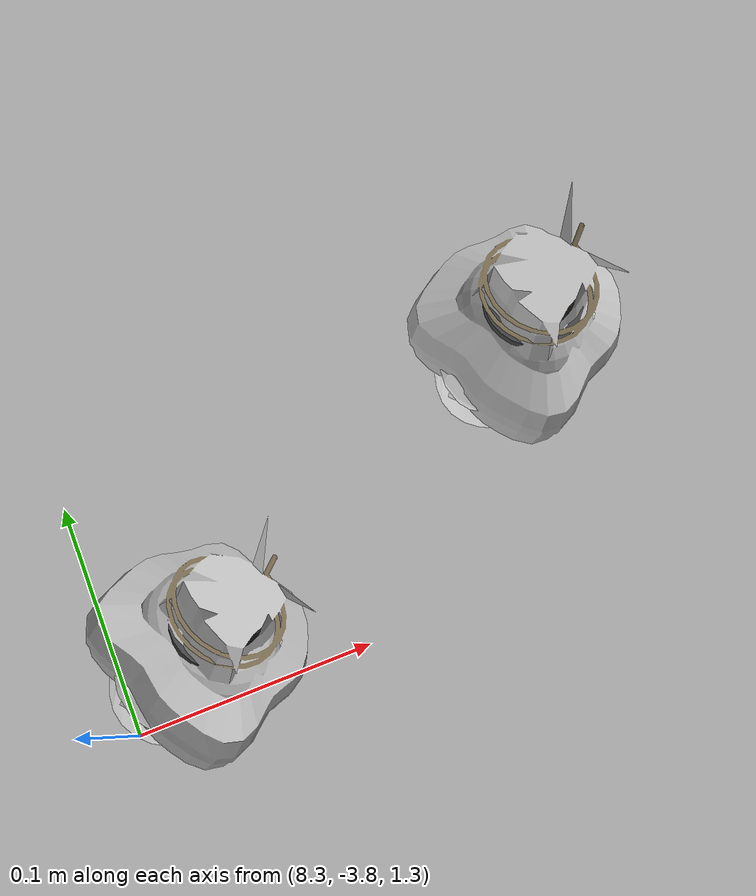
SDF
<sdf version="1.11">
 <world name="peach_orchard">
  <model name="ground">
   <static>true</static>
   <link name="link">
    <visual name="soil">
     <geometry><plane><normal>0 0 1</normal><size>32 22</size></plane></geometry>
     <material>
      <ambient>1 1 1 1</ambient>
      <diffuse>1 1 1 1</diffuse>
      <specular>0.1 0.1 0.1 1</specular>
      <pbr>
       <metal>
        <albedo_map>textures/soil_albedo.png</albedo_map>
        <normal_map type="tangent">textures/soil_normal.png</normal_map>
        <roughness>0.95</roughness>
        <metalness>0</metalness>
       </metal>
      </pbr>
     </material>
    </visual>
    <collision name="c_soil">
     <geometry><plane><normal>0 0 1</normal><size>32 22</size></plane></geometry>
    </collision>
   </link>
  </model>
  <model name="peach_tree_r4_t1_07">
   <pose>8.32265 -3.781 1.27 0 0.489726 0.386636</pose>
   <static>true</static>
   <link name="bag">
    <visual name="bag_mesh">
     <pose>0 0 0.0393109 0 0 0</pose>
     <geometry>
      <mesh><uri>model://peach_sim/meshes/bagged_peach.glb</uri><scale>1.03281 1.26124 0.893431</scale></mesh>
     </geometry>
    </visual>
    <visual name="body">
     <pose>0 0 0.0213109 0 0 0</pose>
     <geometry><ellipsoid><radii>0.0387306 0.0327921 0.0230158</radii></ellipsoid></geometry>
     <material>
      <ambient>1 1 1 1</ambient>
      <diffuse>1 1 1 1</diffuse>
      <specular>0.1 0.1 0.1 1</specular>
      <pbr>
       <metal>
        <albedo_map>textures/paper_bag_albedo.png</albedo_map>
        <normal_map type="tangent">textures/paper_bag_normal.png</normal_map>
        <roughness>0.72</roughness>
        <metalness>0</metalness>
       </metal>
      </pbr>
     </material>
    </visual>
    <visual name="bottom_fold">
     <pose>0 0 0.012 0 0 0.35</pose>
     <geometry><box><size>0.0600324 0.0377109 0.022</size></box></geometry>
     <material>
      <ambient>1 1 1 1</ambient>
      <diffuse>1 1 1 1</diffuse>
      <specular>0.1 0.1 0.1 1</specular>
      <pbr>
       <metal>
        <albedo_map>textures/paper_bag_albedo.png</albedo_map>
        <normal_map type="tangent">textures/paper_bag_normal.png</normal_map>
        <roughness>0.8</roughness>
        <metalness>0</metalness>
       </metal>
      </pbr>
     </material>
    </visual>
    <visual name="fruit">
     <pose>0 0 0.0219365 0 0 0</pose>
     <geometry><sphere><radius>0.029054</radius></sphere></geometry>
     <material>
      <ambient>1 1 1 1</ambient>
      <diffuse>1 1 1 1</diffuse>
      <specular>0.1 0.1 0.1 1</specular>
      <pbr>
       <metal>
        <albedo_map>textures/fruit_skin_albedo.png</albedo_map>
        <normal_map type="tangent">textures/fruit_skin_normal.png</normal_map>
        <roughness>0.55</roughness>
        <metalness>0</metalness>
       </metal>
      </pbr>
     </material>
    </visual>
    <visual name="neck">
     <pose>0 0 0.0516219 0 0 0</pose>
     <geometry><cylinder><radius>0.013</radius><length>0.018</length></cylinder></geometry>
     <material>
      <ambient>1 1 1 1</ambient>
      <diffuse>1 1 1 1</diffuse>
      <specular>0.1 0.1 0.1 1</specular>
      <pbr>
       <metal>
        <albedo_map>textures/paper_bag_albedo.png</albedo_map>
        <normal_map type="tangent">textures/paper_bag_normal.png</normal_map>
        <roughness>0.75</roughness>
        <metalness>0</metalness>
       </metal>
      </pbr>
     </material>
    </visual>
    <visual name="gather">
     <pose>0 0 0.0326219 0 0 0</pose>
     <geometry><cylinder><radius>0.019</radius><length>0.02</length></cylinder></geometry>
     <material>
      <ambient>1 1 1 1</ambient>
      <diffuse>1 1 1 1</diffuse>
      <specular>0.1 0.1 0.1 1</specular>
      <pbr>
       <metal>
        <albedo_map>textures/paper_bag_albedo.png</albedo_map>
        <normal_map type="tangent">textures/paper_bag_normal.png</normal_map>
        <roughness>0.8</roughness>
        <metalness>0</metalness>
       </metal>
      </pbr>
     </material>
    </visual>
    <visual name="inner_paper">
     <pose>0 0 0.0566219 0 0 0</pose>
     <geometry><cylinder><radius>0.01</radius><length>0.008</length></cylinder></geometry>
     <material>
      <ambient>0.180392 0.14902 0.133333 1</ambient>
      <diffuse>0.180392 0.14902 0.133333 1</diffuse>
      <specular>0.1 0.1 0.1 1</specular>
     </material>
    </visual>
    <visual name="wire_0">
     <pose>0 0 0.0466219 0 0 0</pose>
     <geometry><cylinder><radius>0.0205</radius><length>0.0035</length></cylinder></geometry>
     <material>
      <ambient>0.25 0.25 0.25 1</ambient>
      <diffuse>0.25 0.25 0.25 1</diffuse>
      <specular>0.1 0.1 0.1 1</specular>
     </material>
    </visual>
    <visual name="wire_1">
     <pose>0 0 0.0536219 0 0 0</pose>
     <geometry><cylinder><radius>0.0205</radius><length>0.0035</length></cylinder></geometry>
     <material>
      <ambient>0.25 0.25 0.25 1</ambient>
      <diffuse>0.25 0.25 0.25 1</diffuse>
      <specular>0.1 0.1 0.1 1</specular>
     </material>
    </visual>
    <visual name="wire_tail">
     <pose>0.01 0 0.0546219 0 0.521618 0</pose>
     <geometry><cylinder><radius>0.0012</radius><length>0.026</length></cylinder></geometry>
     <material>
      <ambient>0.25 0.25 0.25 1</ambient>
      <diffuse>0.25 0.25 0.25 1</diffuse>
      <specular>0.1 0.1 0.1 1</specular>
     </material>
    </visual>
    <collision name="c_body">
     <pose>0 0 0.0213109 0 0 0</pose>
     <geometry><cylinder><radius>0.0387306</radius><length>0.0426219</length></cylinder></geometry>
    </collision>
   </link>
  </model>
  <model name="peach_tree_r4_t1_08">
   <pose>8.50935 -3.69882 1.27 0 0.031279 0.453744</pose>
   <static>true</static>
   <link name="bag">
    <visual name="bag_mesh">
     <pose>0 0 0.0459509 0 0 0</pose>
     <geometry>
      <mesh><uri>model://peach_sim/meshes/bagged_peach.glb</uri><scale>1.04992 1.24246 1.04434</scale></mesh>
     </geometry>
    </visual>
    <visual name="body">
     <pose>0 0 0.0279509 0 0 0</pose>
     <geometry><ellipsoid><radii>0.0393721 0.032304 0.0301869</radii></ellipsoid></geometry>
     <material>
      <ambient>1 1 1 1</ambient>
      <diffuse>1 1 1 1</diffuse>
      <specular>0.1 0.1 0.1 1</specular>
      <pbr>
       <metal>
        <albedo_map>textures/paper_bag_albedo.png</albedo_map>
        <normal_map type="tangent">textures/paper_bag_normal.png</normal_map>
        <roughness>0.72</roughness>
        <metalness>0</metalness>
       </metal>
      </pbr>
     </material>
    </visual>
    <visual name="bottom_fold">
     <pose>0 0 0.012 0 0 0.35</pose>
     <geometry><box><size>0.0610268 0.0371495 0.022</size></box></geometry>
     <material>
      <ambient>1 1 1 1</ambient>
      <diffuse>1 1 1 1</diffuse>
      <specular>0.1 0.1 0.1 1</specular>
      <pbr>
       <metal>
        <albedo_map>textures/paper_bag_albedo.png</albedo_map>
        <normal_map type="tangent">textures/paper_bag_normal.png</normal_map>
        <roughness>0.8</roughness>
        <metalness>0</metalness>
       </metal>
      </pbr>
     </material>
    </visual>
    <visual name="fruit">
     <pose>0 0 0.0215998 0 0 0</pose>
     <geometry><sphere><radius>0.0287037</radius></sphere></geometry>
     <material>
      <ambient>1 1 1 1</ambient>
      <diffuse>1 1 1 1</diffuse>
      <specular>0.1 0.1 0.1 1</specular>
      <pbr>
       <metal>
        <albedo_map>textures/fruit_skin_albedo.png</albedo_map>
        <normal_map type="tangent">textures/fruit_skin_normal.png</normal_map>
        <roughness>0.55</roughness>
        <metalness>0</metalness>
       </metal>
      </pbr>
     </material>
    </visual>
    <visual name="neck">
     <pose>0 0 0.0649017 0 0 0</pose>
     <geometry><cylinder><radius>0.013</radius><length>0.018</length></cylinder></geometry>
     <material>
      <ambient>1 1 1 1</ambient>
      <diffuse>1 1 1 1</diffuse>
      <specular>0.1 0.1 0.1 1</specular>
      <pbr>
       <metal>
        <albedo_map>textures/paper_bag_albedo.png</albedo_map>
        <normal_map type="tangent">textures/paper_bag_normal.png</normal_map>
        <roughness>0.75</roughness>
        <metalness>0</metalness>
       </metal>
      </pbr>
     </material>
    </visual>
    <visual name="gather">
     <pose>0 0 0.0459017 0 0 0</pose>
     <geometry><cylinder><radius>0.019</radius><length>0.02</length></cylinder></geometry>
     <material>
      <ambient>1 1 1 1</ambient>
      <diffuse>1 1 1 1</diffuse>
      <specular>0.1 0.1 0.1 1</specular>
      <pbr>
       <metal>
        <albedo_map>textures/paper_bag_albedo.png</albedo_map>
        <normal_map type="tangent">textures/paper_bag_normal.png</normal_map>
        <roughness>0.8</roughness>
        <metalness>0</metalness>
       </metal>
      </pbr>
     </material>
    </visual>
    <visual name="inner_paper">
     <pose>0 0 0.0699017 0 0 0</pose>
     <geometry><cylinder><radius>0.01</radius><length>0.008</length></cylinder></geometry>
     <material>
      <ambient>0.180392 0.14902 0.133333 1</ambient>
      <diffuse>0.180392 0.14902 0.133333 1</diffuse>
      <specular>0.1 0.1 0.1 1</specular>
     </material>
    </visual>
    <visual name="wire_0">
     <pose>0 0 0.0599017 0 0 0</pose>
     <geometry><cylinder><radius>0.0205</radius><length>0.0035</length></cylinder></geometry>
     <material>
      <ambient>0.25 0.25 0.25 1</ambient>
      <diffuse>0.25 0.25 0.25 1</diffuse>
      <specular>0.1 0.1 0.1 1</specular>
     </material>
    </visual>
    <visual name="wire_1">
     <pose>0 0 0.0669017 0 0 0</pose>
     <geometry><cylinder><radius>0.0205</radius><length>0.0035</length></cylinder></geometry>
     <material>
      <ambient>0.25 0.25 0.25 1</ambient>
      <diffuse>0.25 0.25 0.25 1</diffuse>
      <specular>0.1 0.1 0.1 1</specular>
     </material>
    </visual>
    <visual name="wire_tail">
     <pose>0.01 0 0.0679017 0 0.521618 0</pose>
     <geometry><cylinder><radius>0.0012</radius><length>0.026</length></cylinder></geometry>
     <material>
      <ambient>0.25 0.25 0.25 1</ambient>
      <diffuse>0.25 0.25 0.25 1</diffuse>
      <specular>0.1 0.1 0.1 1</specular>
     </material>
    </visual>
    <collision name="c_body">
     <pose>0 0 0.0279509 0 0 0</pose>
     <geometry><cylinder><radius>0.0393721</radius><length>0.0559017</length></cylinder></geometry>
    </collision>
   </link>
  </model>
 </world>
</sdf>
